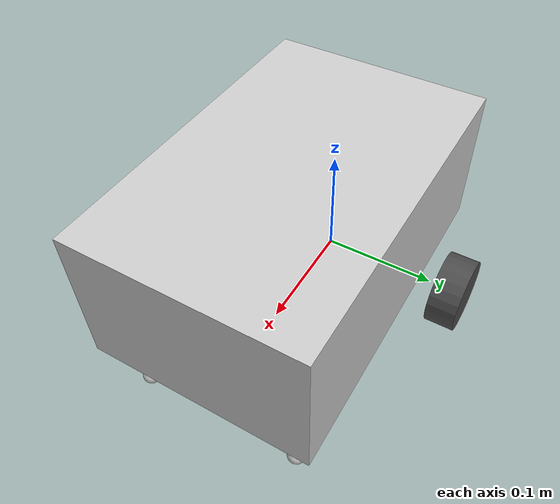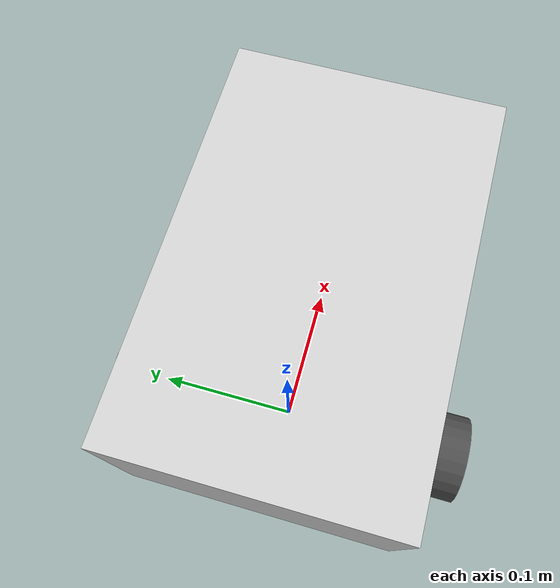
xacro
<?xml version="1.0"?>
<robot xmlns:xacro="http://www.ros.org/wiki/xacro" >

    <!-- MATERIALS -->
    <!-- white black light_gray dark_gray green blue red yellow orange -->
    <xacro:include filename="materials.xacro" />

    <!-- PROPERTIES -->

    <xacro:property name="L_x" value="0.29"/> <!-- box length -->
    <xacro:property name="L_y" value="0.19"/> <!-- box width -->
    <xacro:property name="L_z" value="0.124"/> <!-- box height -->

    <xacro:property name="x_w" value="0.066"/> <!-- wheel axis x-offset from centre -->
    <xacro:property name="z_w" value="0.022"/> <!-- wheel axis z-offset from bottom -->
    <xacro:property name="y_w" value="0.122"/> <!-- wheel half separation -->

    <xacro:property name="W_D" value="0.065"/> <!-- wheel diameter -->
    <xacro:property name="W_h" value="0.026"/> <!-- wheel width -->

    <xacro:property name="x_c" value="0.024"/> <!-- caster centre x-offset from edge -->
    <xacro:property name="y_c" value="0.024"/> <!-- caster centre y-offset from edge -->
    <xacro:property name="z_c" value="0.052"/> <!-- caster contact z-offset from bottom -->

    <xacro:property name="c_D" value="0.016"/> <!-- caster diameter -->

    <!-- BASE LINK -->

    <link name="base_link">
    </link>

    <!-- CHASSIS LINK -->

    <joint name="chassis_joint" type = "fixed">
        <parent link="base_link" />
        <child link="chassis_link" />
        <origin xyz="${x_w-L_x/2} 0 ${z_w}" />
    </joint>

    <link name="chassis_link">
        <visual>
            <geometry>
                <box size="${L_x} ${L_y} ${L_z}"/>
            </geometry>
            <origin xyz="${L_x/2} 0 ${L_z/2}" />
            <material name="light_gray" />
        </visual>

    </link>

    <!-- LEFT WHEEL LINK -->

    <joint name="left_wheel_joint" type = "continuous">
        <parent link="base_link" />
        <child link="left_wheel_link" />
        <origin xyz="0 ${y_w} 0" rpy="-${pi/2} 0 0" />
        <axis xyz="0 0 1" />
    </joint>

    <link name="left_wheel_link">
        <visual>
            <geometry>
                <cylinder radius="${W_D/2}" length="${W_h}" />
            </geometry>
            <material name="dark_gray" />
        </visual>

    </link>

    <!-- RIGHT WHEEL LINK -->

    <joint name="right_wheel_joint" type = "continuous">
        <parent link="base_link" />
        <child link="right_wheel_link" />
        <origin xyz="0 -${y_w} 0" rpy="${pi/2} 0 0" />
        <axis xyz="0 0 -1" />
    </joint>

    <link name="right_wheel_link">
        <visual>
            <geometry>
                <cylinder radius="${W_D/2}" length="${W_h}" />
            </geometry>
            <material name="dark_gray" />
        </visual>

    </link>

<!-- LEFT CASTER WHEEL LINK -->

    <joint name="left_caster_wheel_joint" type = "fixed">
        <parent link="chassis_link" />
        <child link="left_caster_wheel_link" />
        <origin xyz="${L_x-x_c} ${L_y/2-y_c} -${z_c}" />
    </joint>

    <link name="left_caster_wheel_link">
        <visual>
            <geometry>
                <sphere radius="${c_D/2}" />
            </geometry>
            <material name="light_gray" />
        </visual>

    </link>

<!-- RIGHT CASTER WHEEL LINK -->

    <joint name="right_caster_wheel_joint" type = "fixed">
        <parent link="chassis_link" />
        <child link="right_caster_wheel_link" />
        <origin xyz="${L_x-x_c} ${-L_y/2+y_c} -${z_c}" />
    </joint>

    <link name="right_caster_wheel_link">
        <visual>
            <geometry>
                <sphere radius="${c_D/2}" />
            </geometry>
            <material name="light_gray" />
        </visual>

    </link>

</robot>
